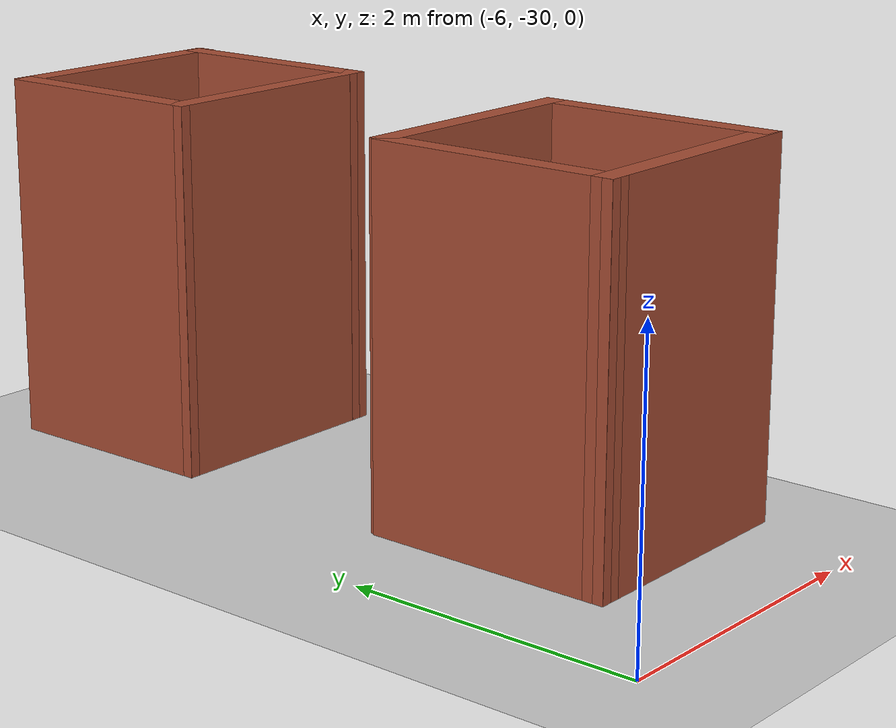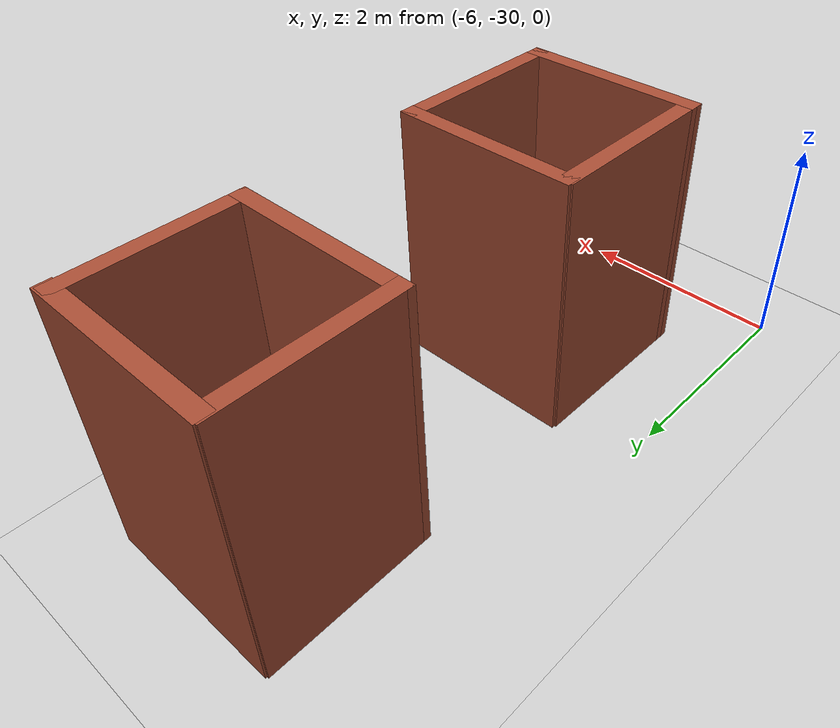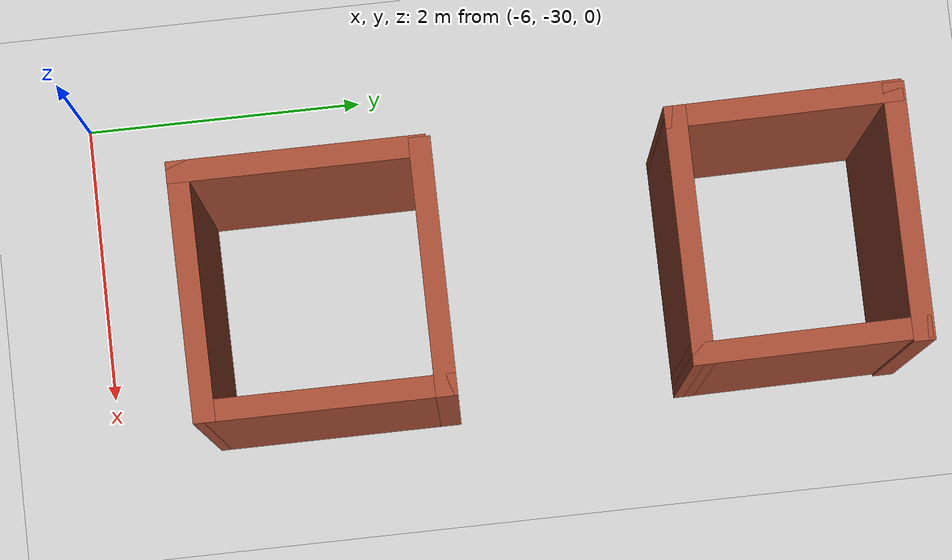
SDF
<sdf version="1.6">
 <world name="default">
  <model name="ground_plane">
   <static>1</static>
   <link name="link">
    <collision name="collision">
     <geometry><plane><normal>0 0 1</normal><size>100 100</size></plane></geometry>
     <surface><friction><ode><mu>100</mu><mu2>50</mu2></ode></friction></surface>
    </collision>
    <visual name="visual">
     <cast_shadows>0</cast_shadows>
     <geometry><plane><normal>0 0 1</normal><size>100 100</size></plane></geometry>
     <material>
      <script><uri>file://media/materials/scripts/gazebo.material</uri><name>Gazebo/Grey</name></script>
     </material>
    </visual>
   </link>
  </model>
  <model name="TwoShells">
   <pose>-4.44429 -26.7939 0 0 -0 0</pose>
   <link name="Wall_0">
    <collision name="Wall_0_Collision">
     <geometry><box><size>1.75 0.15 2.5</size></box></geometry>
     <pose>0 0 1.25 0 -0 0</pose>
    </collision>
    <visual name="Wall_0_Visual">
     <pose>0 0 1.25 0 -0 0</pose>
     <geometry><box><size>1.75 0.15 2.5</size></box></geometry>
     <material>
      <script><uri>file://media/materials/scripts/gazebo.material</uri><name>Gazebo/Bricks</name></script>
      <ambient>1 1 1 1</ambient>
     </material>
     <meta><layer>0</layer></meta>
    </visual>
    <pose>0.019959 -0.780076 0 0 -0 3.14159</pose>
   </link>
   <link name="Wall_1">
    <collision name="Wall_1_Collision">
     <geometry><box><size>1.75 0.15 2.5</size></box></geometry>
     <pose>0 0 1.25 0 -0 0</pose>
    </collision>
    <visual name="Wall_1_Visual">
     <pose>0 0 1.25 0 -0 0</pose>
     <geometry><box><size>1.75 0.15 2.5</size></box></geometry>
     <material>
      <script><uri>file://media/materials/scripts/gazebo.material</uri><name>Gazebo/Bricks</name></script>
      <ambient>1 1 1 1</ambient>
     </material>
     <meta><layer>0</layer></meta>
    </visual>
    <pose>-0.79525 -1.61049 0 0 0 -1.5708</pose>
   </link>
   <link name="Wall_10">
    <collision name="Wall_10_Collision">
     <geometry><box><size>1.75 0.15 2.5</size></box></geometry>
     <pose>0 0 1.25 0 -0 0</pose>
    </collision>
    <visual name="Wall_10_Visual">
     <pose>0 0 1.25 0 -0 0</pose>
     <geometry><box><size>1.75 0.15 2.5</size></box></geometry>
     <material>
      <script><uri>file://media/materials/scripts/gazebo.material</uri><name>Gazebo/Bricks</name></script>
      <ambient>1 1 1 1</ambient>
     </material>
     <meta><layer>0</layer></meta>
    </visual>
    <pose>-0.004674 2.4112 0 0 -0 3.14159</pose>
   </link>
   <link name="Wall_11">
    <collision name="Wall_11_Collision">
     <geometry><box><size>1.60654 0.15 2.5</size></box></geometry>
     <pose>0 0 1.25 0 -0 0</pose>
    </collision>
    <visual name="Wall_11_Visual">
     <pose>0 0 1.25 0 -0 0</pose>
     <geometry><box><size>1.60654 0.15 2.5</size></box></geometry>
     <material>
      <script><uri>file://media/materials/scripts/gazebo.material</uri><name>Gazebo/Bricks</name></script>
      <ambient>1 1 1 1</ambient>
     </material>
     <meta><layer>0</layer></meta>
    </visual>
    <pose>-0.812278 1.66776 0 0 0 -1.56035</pose>
   </link>
   <link name="Wall_2">
    <collision name="Wall_2_Collision">
     <geometry><box><size>1.76528 0.15 2.5</size></box></geometry>
     <pose>0 0 1.25 0 -0 0</pose>
    </collision>
    <visual name="Wall_2_Visual">
     <pose>0 0 1.25 0 -0 0</pose>
     <geometry><box><size>1.76528 0.15 2.5</size></box></geometry>
     <material>
      <script><uri>file://media/materials/scripts/gazebo.material</uri><name>Gazebo/Bricks</name></script>
      <ambient>1 1 1 1</ambient>
     </material>
     <meta><layer>0</layer></meta>
    </visual>
    <pose>0.012354 -2.40289 0 0 -0 0.009416</pose>
   </link>
   <link name="Wall_6">
    <collision name="Wall_6_Collision">
     <geometry><box><size>1.75 0.15 2.5</size></box></geometry>
     <pose>0 0 1.25 0 -0 0</pose>
    </collision>
    <visual name="Wall_6_Visual">
     <pose>0 0 1.25 0 -0 0</pose>
     <geometry><box><size>1.75 0.15 2.5</size></box></geometry>
     <material>
      <script><uri>file://media/materials/scripts/gazebo.material</uri><name>Gazebo/Bricks</name></script>
      <ambient>1 1 1 1</ambient>
     </material>
     <meta><layer>0</layer></meta>
    </visual>
    <pose>0.819959 -1.58008 0 0 -0 1.5708</pose>
   </link>
   <link name="Wall_8">
    <collision name="Wall_8_Collision">
     <geometry><box><size>1.75 0.15 2.5</size></box></geometry>
     <pose>0 0 1.25 0 -0 0</pose>
    </collision>
    <visual name="Wall_8_Visual">
     <pose>0 0 1.25 0 -0 0</pose>
     <geometry><box><size>1.75 0.15 2.5</size></box></geometry>
     <material>
      <script><uri>file://media/materials/scripts/gazebo.material</uri><name>Gazebo/Bricks</name></script>
      <ambient>1 1 1 1</ambient>
     </material>
     <meta><layer>0</layer></meta>
    </visual>
    <pose>-0.004674 0.939526 0 0 -0 0</pose>
   </link>
   <link name="Wall_9">
    <collision name="Wall_9_Collision">
     <geometry><box><size>1.60654 0.15 2.5</size></box></geometry>
     <pose>0 0 1.25 0 -0 0</pose>
    </collision>
    <visual name="Wall_9_Visual">
     <pose>0 0 1.25 0 -0 0</pose>
     <geometry><box><size>1.60654 0.15 2.5</size></box></geometry>
     <material>
      <script><uri>file://media/materials/scripts/gazebo.material</uri><name>Gazebo/Bricks</name></script>
      <ambient>1 1 1 1</ambient>
     </material>
     <meta><layer>0</layer></meta>
    </visual>
    <pose>0.787722 1.66776 0 0 -0 1.58124</pose>
   </link>
   <static>1</static>
  </model>
 </world>
</sdf>
